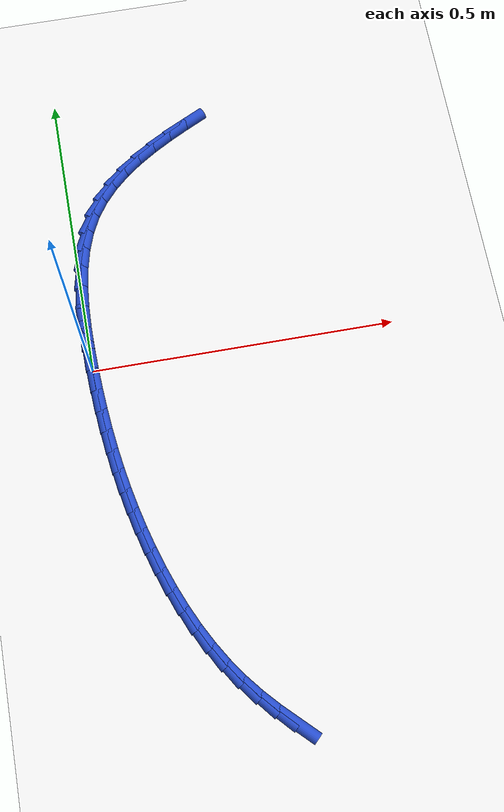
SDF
<sdf version="1.6">
 <world name="default">
  <model name="ground_plane">
   <static>1</static>
   <link name="link">
    <collision name="collision">
     <geometry><plane><normal>0 0 1</normal><size>100 100</size></plane></geometry>
     <surface><friction><ode><mu>100</mu><mu2>50</mu2></ode></friction></surface>
    </collision>
    <visual name="visual">
     <cast_shadows>0</cast_shadows>
     <geometry><plane><normal>0 0 1</normal><size>100 100</size></plane></geometry>
     <material>
      <script><uri>file://media/materials/scripts/gazebo.material</uri><name>Gazebo/WhiteGlow</name></script>
     </material>
    </visual>
   </link>
  </model>
  <model name="line">
   <link name="link_0">
    <pose>2.6386770372865964e-17 -6.245004513516506e-17 0.01 0 1.57 -1.5356055546608178</pose>
    <collision name="collision">
     <geometry><cylinder><radius>0.01</radius><length>0.08</length></cylinder></geometry>
    </collision>
    <visual name="visual">
     <material>
      <script><name>Gazebo/Blue</name><uri>file://media/materials/scripts/gazebo.material</uri></script>
     </material>
     <geometry><cylinder><radius>0.01</radius><length>0.08</length></cylinder></geometry>
    </visual>
   </link>
   <link name="link_1">
    <pose>-0.0012859215113197296 0.03652635521292729 0.01 0 1.57 -1.5630723326026337</pose>
    <collision name="collision">
     <geometry><cylinder><radius>0.01</radius><length>0.08</length></cylinder></geometry>
    </collision>
    <visual name="visual">
     <material>
      <script><name>Gazebo/Blue</name><uri>file://media/materials/scripts/gazebo.material</uri></script>
     </material>
     <geometry><cylinder><radius>0.01</radius><length>0.08</length></cylinder></geometry>
    </visual>
   </link>
   <link name="link_2">
    <pose>-0.0015701296713868072 0.0733211146352177 0.01 0 1.57 1.5403618289181997</pose>
    <collision name="collision">
     <geometry><cylinder><radius>0.01</radius><length>0.08</length></cylinder></geometry>
    </collision>
    <visual name="visual">
     <material>
      <script><name>Gazebo/Blue</name><uri>file://media/materials/scripts/gazebo.material</uri></script>
     </material>
     <geometry><cylinder><radius>0.01</radius><length>0.08</length></cylinder></geometry>
    </visual>
   </link>
   <link name="link_3">
    <pose>-0.00045516800112419204 0.10994460045333272 0.01 0 1.57 1.4901225052156661</pose>
    <collision name="collision">
     <geometry><cylinder><radius>0.01</radius><length>0.08</length></cylinder></geometry>
    </collision>
    <visual name="visual">
     <material>
      <script><name>Gazebo/Blue</name><uri>file://media/materials/scripts/gazebo.material</uri></script>
     </material>
     <geometry><cylinder><radius>0.01</radius><length>0.08</length></cylinder></geometry>
    </visual>
   </link>
   <link name="link_4">
    <pose>0.0024564199785451334 0.14595713485373366 0.01 0 1.57 1.425786116624287</pose>
    <collision name="collision">
     <geometry><cylinder><radius>0.01</radius><length>0.08</length></cylinder></geometry>
    </collision>
    <visual name="visual">
     <material>
      <script><name>Gazebo/Blue</name><uri>file://media/materials/scripts/gazebo.material</uri></script>
     </material>
     <geometry><cylinder><radius>0.01</radius><length>0.08</length></cylinder></geometry>
    </visual>
   </link>
   <link name="link_5">
    <pose>0.007562090746698185 0.180919040022882 0.01 0 1.57 1.3447636216351997</pose>
    <collision name="collision">
     <geometry><cylinder><radius>0.01</radius><length>0.08</length></cylinder></geometry>
    </collision>
    <visual name="visual">
     <material>
      <script><name>Gazebo/Blue</name><uri>file://media/materials/scripts/gazebo.material</uri></script>
     </material>
     <geometry><cylinder><radius>0.01</radius><length>0.08</length></cylinder></geometry>
    </visual>
   </link>
   <link name="link_6">
    <pose>0.015259300782411986 0.21439063814723916 0.01 0 1.57 1.2441365064731917</pose>
    <collision name="collision">
     <geometry><cylinder><radius>0.01</radius><length>0.08</length></cylinder></geometry>
    </collision>
    <visual name="visual">
     <material>
      <script><name>Gazebo/Blue</name><uri>file://media/materials/scripts/gazebo.material</uri></script>
     </material>
     <geometry><cylinder><radius>0.01</radius><length>0.08</length></cylinder></geometry>
    </visual>
   </link>
   <link name="link_7">
    <pose>0.02594550656476354 0.24593225141326658 0.01 0 1.57 1.1213596077069625</pose>
    <collision name="collision">
     <geometry><cylinder><radius>0.01</radius><length>0.08</length></cylinder></geometry>
    </collision>
    <visual name="visual">
     <material>
      <script><name>Gazebo/Blue</name><uri>file://media/materials/scripts/gazebo.material</uri></script>
     </material>
     <geometry><cylinder><radius>0.01</radius><length>0.08</length></cylinder></geometry>
    </visual>
   </link>
   <link name="link_8">
    <pose>0.04001730531521694 0.27510503336460845 0.01 0 1.57 0.9846122050661572</pose>
    <collision name="collision">
     <geometry><cylinder><radius>0.01</radius><length>0.08</length></cylinder></geometry>
    </collision>
    <visual name="visual">
     <material>
      <script><name>Gazebo/Blue</name><uri>file://media/materials/scripts/gazebo.material</uri></script>
     </material>
     <geometry><cylinder><radius>0.01</radius><length>0.08</length></cylinder></geometry>
    </visual>
   </link>
   <link name="link_9">
    <pose>0.057660380358999806 0.3016742029845734 0.01 0 1.57 0.8581073378328359</pose>
    <collision name="collision">
     <geometry><cylinder><radius>0.01</radius><length>0.08</length></cylinder></geometry>
    </collision>
    <visual name="visual">
     <material>
      <script><name>Gazebo/Blue</name><uri>file://media/materials/scripts/gazebo.material</uri></script>
     </material>
     <geometry><cylinder><radius>0.01</radius><length>0.08</length></cylinder></geometry>
    </visual>
   </link>
   <link name="link_10">
    <pose>0.07857486763970867 0.3258747607250155 0.01 0 1.57 0.7487419715797645</pose>
    <collision name="collision">
     <geometry><cylinder><radius>0.01</radius><length>0.08</length></cylinder></geometry>
    </collision>
    <visual name="visual">
     <material>
      <script><name>Gazebo/Blue</name><uri>file://media/materials/scripts/gazebo.material</uri></script>
     </material>
     <geometry><cylinder><radius>0.01</radius><length>0.08</length></cylinder></geometry>
    </visual>
   </link>
   <link name="link_11">
    <pose>0.10239282074968625 0.34800757872851135 0.01 0 1.57 0.6579338277247764</pose>
    <collision name="collision">
     <geometry><cylinder><radius>0.01</radius><length>0.08</length></cylinder></geometry>
    </collision>
    <visual name="visual">
     <material>
      <script><name>Gazebo/Blue</name><uri>file://media/materials/scripts/gazebo.material</uri></script>
     </material>
     <geometry><cylinder><radius>0.01</radius><length>0.08</length></cylinder></geometry>
    </visual>
   </link>
   <link name="link_12">
    <pose>0.12874629328127532 0.3683735291376379 0.01 0 1.57 0.5852284718221454</pose>
    <collision name="collision">
     <geometry><cylinder><radius>0.01</radius><length>0.08</length></cylinder></geometry>
    </collision>
    <visual name="visual">
     <material>
      <script><name>Gazebo/Blue</name><uri>file://media/materials/scripts/gazebo.material</uri></script>
     </material>
     <geometry><cylinder><radius>0.01</radius><length>0.08</length></cylinder></geometry>
    </visual>
   </link>
   <link name="link_13">
    <pose>0.1572673388268185 0.38727348409497153 0.01 0 1.57 0.5292492106829894</pose>
    <collision name="collision">
     <geometry><cylinder><radius>0.01</radius><length>0.08</length></cylinder></geometry>
    </collision>
    <visual name="visual">
     <material>
      <script><name>Gazebo/Blue</name><uri>file://media/materials/scripts/gazebo.material</uri></script>
     </material>
     <geometry><cylinder><radius>0.01</radius><length>0.08</length></cylinder></geometry>
    </visual>
   </link>
   <link name="link_14">
    <pose>0.18758801097865865 0.4050083157430891 0.01 0 1.57 0.4883865926694028</pose>
    <collision name="collision">
     <geometry><cylinder><radius>0.01</radius><length>0.08</length></cylinder></geometry>
    </collision>
    <visual name="visual">
     <material>
      <script><name>Gazebo/Blue</name><uri>file://media/materials/scripts/gazebo.material</uri></script>
     </material>
     <geometry><cylinder><radius>0.01</radius><length>0.08</length></cylinder></geometry>
    </visual>
   </link>
   <link name="link_15">
    <pose>0.21934036332913837 0.42187889622456726 0.01 0 1.57 0.4611862426254339</pose>
    <collision name="collision">
     <geometry><cylinder><radius>0.01</radius><length>0.08</length></cylinder></geometry>
    </collision>
    <visual name="visual">
     <material>
      <script><name>Gazebo/Blue</name><uri>file://media/materials/scripts/gazebo.material</uri></script>
     </material>
     <geometry><cylinder><radius>0.01</radius><length>0.08</length></cylinder></geometry>
    </visual>
   </link>
   <link name="link_211">
    <pose>0.22180204644094437 -0.6049320615983813 0.01 0 1.57 -0.7749138666314349</pose>
    <collision name="collision">
     <geometry><cylinder><radius>0.01</radius><length>0.08</length></cylinder></geometry>
    </collision>
    <visual name="visual">
     <material>
      <script><name>Gazebo/Blue</name><uri>file://media/materials/scripts/gazebo.material</uri></script>
     </material>
     <geometry><cylinder><radius>0.01</radius><length>0.08</length></cylinder></geometry>
    </visual>
   </link>
   <link name="link_212">
    <pose>0.1975781982512313 -0.5812109015224816 0.01 0 1.57 -0.8275202315563308</pose>
    <collision name="collision">
     <geometry><cylinder><radius>0.01</radius><length>0.08</length></cylinder></geometry>
    </collision>
    <visual name="visual">
     <material>
      <script><name>Gazebo/Blue</name><uri>file://media/materials/scripts/gazebo.material</uri></script>
     </material>
     <geometry><cylinder><radius>0.01</radius><length>0.08</length></cylinder></geometry>
    </visual>
   </link>
   <link name="link_213">
    <pose>0.17466398257765706 -0.5562801647428105 0.01 0 1.57 -0.8880499036819132</pose>
    <collision name="collision">
     <geometry><cylinder><radius>0.01</radius><length>0.08</length></cylinder></geometry>
    </collision>
    <visual name="visual">
     <material>
      <script><name>Gazebo/Blue</name><uri>file://media/materials/scripts/gazebo.material</uri></script>
     </material>
     <geometry><cylinder><radius>0.01</radius><length>0.08</length></cylinder></geometry>
    </visual>
   </link>
   <link name="link_214">
    <pose>0.15324415365968297 -0.5299404416082398 0.01 0 1.57 -0.9552936109284238</pose>
    <collision name="collision">
     <geometry><cylinder><radius>0.01</radius><length>0.08</length></cylinder></geometry>
    </collision>
    <visual name="visual">
     <material>
      <script><name>Gazebo/Blue</name><uri>file://media/materials/scripts/gazebo.material</uri></script>
     </material>
     <geometry><cylinder><radius>0.01</radius><length>0.08</length></cylinder></geometry>
    </visual>
   </link>
   <link name="link_215">
    <pose>0.13349305542224207 -0.5020095338169032 0.01 0 1.57 -1.0211977718577867</pose>
    <collision name="collision">
     <geometry><cylinder><radius>0.01</radius><length>0.08</length></cylinder></geometry>
    </collision>
    <visual name="visual">
     <material>
      <script><name>Gazebo/Blue</name><uri>file://media/materials/scripts/gazebo.material</uri></script>
     </material>
     <geometry><cylinder><radius>0.01</radius><length>0.08</length></cylinder></geometry>
    </visual>
   </link>
   <link name="link_216">
    <pose>0.11544222650766334 -0.4725413427149124 0.01 0 1.57 -1.0806727566116565</pose>
    <collision name="collision">
     <geometry><cylinder><radius>0.01</radius><length>0.08</length></cylinder></geometry>
    </collision>
    <visual name="visual">
     <material>
      <script><name>Gazebo/Blue</name><uri>file://media/materials/scripts/gazebo.material</uri></script>
     </material>
     <geometry><cylinder><radius>0.01</radius><length>0.08</length></cylinder></geometry>
    </visual>
   </link>
   <link name="link_217">
    <pose>0.09901954838408325 -0.4417611458180138 0.01 0 1.57 -1.1341810727296648</pose>
    <collision name="collision">
     <geometry><cylinder><radius>0.01</radius><length>0.08</length></cylinder></geometry>
    </collision>
    <visual name="visual">
     <material>
      <script><name>Gazebo/Blue</name><uri>file://media/materials/scripts/gazebo.material</uri></script>
     </material>
     <geometry><cylinder><radius>0.01</radius><length>0.08</length></cylinder></geometry>
    </visual>
   </link>
   <link name="link_218">
    <pose>0.08415057464624168 -0.40989806930973155 0.01 0 1.57 -1.1823320885928164</pose>
    <collision name="collision">
     <geometry><cylinder><radius>0.01</radius><length>0.08</length></cylinder></geometry>
    </collision>
    <visual name="visual">
     <material>
      <script><name>Gazebo/Blue</name><uri>file://media/materials/scripts/gazebo.material</uri></script>
     </material>
     <geometry><cylinder><radius>0.01</radius><length>0.08</length></cylinder></geometry>
    </visual>
   </link>
   <link name="link_219">
    <pose>0.07076085888887815 -0.3771812393735886 0.01 0 1.57 -1.2257192991820336</pose>
    <collision name="collision">
     <geometry><cylinder><radius>0.01</radius><length>0.08</length></cylinder></geometry>
    </collision>
    <visual name="visual">
     <material>
      <script><name>Gazebo/Blue</name><uri>file://media/materials/scripts/gazebo.material</uri></script>
     </material>
     <geometry><cylinder><radius>0.01</radius><length>0.08</length></cylinder></geometry>
    </visual>
   </link>
   <link name="link_220">
    <pose>0.05877595470673329 -0.34383978219311095 0.01 0 1.57 -1.2648968976108184</pose>
    <collision name="collision">
     <geometry><cylinder><radius>0.01</radius><length>0.08</length></cylinder></geometry>
    </collision>
    <visual name="visual">
     <material>
      <script><name>Gazebo/Blue</name><uri>file://media/materials/scripts/gazebo.material</uri></script>
     </material>
     <geometry><cylinder><radius>0.01</radius><length>0.08</length></cylinder></geometry>
    </visual>
   </link>
   <link name="link_221">
    <pose>0.04812141569454663 -0.31010282395182204 0.01 0 1.57 -1.3003690648900965</pose>
    <collision name="collision">
     <geometry><cylinder><radius>0.01</radius><length>0.08</length></cylinder></geometry>
    </collision>
    <visual name="visual">
     <material>
      <script><name>Gazebo/Blue</name><uri>file://media/materials/scripts/gazebo.material</uri></script>
     </material>
     <geometry><cylinder><radius>0.01</radius><length>0.08</length></cylinder></geometry>
    </visual>
   </link>
   <link name="link_222">
    <pose>0.03872279544705806 -0.2761994908332457 0.01 0 1.57 -1.3327938383768845</pose>
    <collision name="collision">
     <geometry><cylinder><radius>0.01</radius><length>0.08</length></cylinder></geometry>
    </collision>
    <visual name="visual">
     <material>
      <script><name>Gazebo/Blue</name><uri>file://media/materials/scripts/gazebo.material</uri></script>
     </material>
     <geometry><cylinder><radius>0.01</radius><length>0.08</length></cylinder></geometry>
    </visual>
   </link>
   <link name="link_223">
    <pose>0.03050585658581642 -0.24232925766868396 0.01 0 1.57 -1.3638129635084668</pose>
    <collision name="collision">
     <geometry><cylinder><radius>0.01</radius><length>0.08</length></cylinder></geometry>
    </collision>
    <visual name="visual">
     <material>
      <script><name>Gazebo/Blue</name><uri>file://media/materials/scripts/gazebo.material</uri></script>
     </material>
     <geometry><cylinder><radius>0.01</radius><length>0.08</length></cylinder></geometry>
    </visual>
   </link>
   <link name="link_224">
    <pose>0.023397852462611765 -0.2084801327908882 0.01 0 1.57 -1.3937474341627636</pose>
    <collision name="collision">
     <geometry><cylinder><radius>0.01</radius><length>0.08</length></cylinder></geometry>
    </collision>
    <visual name="visual">
     <material>
      <script><name>Gazebo/Blue</name><uri>file://media/materials/scripts/gazebo.material</uri></script>
     </material>
     <geometry><cylinder><radius>0.01</radius><length>0.08</length></cylinder></geometry>
    </visual>
   </link>
   <link name="link_225">
    <pose>0.01732668397823732 -0.17454826692031095 0.01 0 1.57 -1.4222330329116193</pose>
    <collision name="collision">
     <geometry><cylinder><radius>0.01</radius><length>0.08</length></cylinder></geometry>
    </collision>
    <visual name="visual">
     <material>
      <script><name>Gazebo/Blue</name><uri>file://media/materials/scripts/gazebo.material</uri></script>
     </material>
     <geometry><cylinder><radius>0.01</radius><length>0.08</length></cylinder></geometry>
    </visual>
   </link>
   <link name="link_226">
    <pose>0.012220254671583998 -0.14042943655193213 0.01 0 1.57 -1.4489448720569063</pose>
    <collision name="collision">
     <geometry><cylinder><radius>0.01</radius><length>0.08</length></cylinder></geometry>
    </collision>
    <visual name="visual">
     <material>
      <script><name>Gazebo/Blue</name><uri>file://media/materials/scripts/gazebo.material</uri></script>
     </material>
     <geometry><cylinder><radius>0.01</radius><length>0.08</length></cylinder></geometry>
    </visual>
   </link>
   <link name="link_227">
    <pose>0.008006468081542708 -0.10601941818073175 0.01 0 1.57 -1.4736117569640168</pose>
    <collision name="collision">
     <geometry><cylinder><radius>0.01</radius><length>0.08</length></cylinder></geometry>
    </collision>
    <visual name="visual">
     <material>
      <script><name>Gazebo/Blue</name><uri>file://media/materials/scripts/gazebo.material</uri></script>
     </material>
     <geometry><cylinder><radius>0.01</radius><length>0.08</length></cylinder></geometry>
    </visual>
   </link>
   <link name="link_228">
    <pose>0.004613227747004272 -0.07121398830168889 0.01 0 1.57 -1.4960234939794987</pose>
    <collision name="collision">
     <geometry><cylinder><radius>0.01</radius><length>0.08</length></cylinder></geometry>
    </collision>
    <visual name="visual">
     <material>
      <script><name>Gazebo/Blue</name><uri>file://media/materials/scripts/gazebo.material</uri></script>
     </material>
     <geometry><cylinder><radius>0.01</radius><length>0.08</length></cylinder></geometry>
    </visual>
   </link>
   <link name="link_229">
    <pose>0.0019684372068597745 -0.03590892340978529 0.01 0 1.57 -1.5160336417224343</pose>
    <collision name="collision">
     <geometry><cylinder><radius>0.01</radius><length>0.08</length></cylinder></geometry>
    </collision>
    <visual name="visual">
     <material>
      <script><name>Gazebo/Blue</name><uri>file://media/materials/scripts/gazebo.material</uri></script>
     </material>
     <geometry><cylinder><radius>0.01</radius><length>0.08</length></cylinder></geometry>
    </visual>
   </link>
   <link name="link_230">
    <pose>2.199575157429967e-17 -4.85722573273506e-17 0.01 0 1.57 -1.533558172017769</pose>
    <collision name="collision">
     <geometry><cylinder><radius>0.01</radius><length>0.08</length></cylinder></geometry>
    </collision>
    <visual name="visual">
     <material>
      <script><name>Gazebo/Blue</name><uri>file://media/materials/scripts/gazebo.material</uri></script>
     </material>
     <geometry><cylinder><radius>0.01</radius><length>0.08</length></cylinder></geometry>
    </visual>
   </link>
   <link name="link_231">
    <pose>-0.001364180334684077 0.036617005432686825 0.01 0 1.57 -1.5485708863560421</pose>
    <collision name="collision">
     <geometry><cylinder><radius>0.01</radius><length>0.08</length></cylinder></geometry>
    </collision>
    <visual name="visual">
     <material>
      <script><name>Gazebo/Blue</name><uri>file://media/materials/scripts/gazebo.material</uri></script>
     </material>
     <geometry><cylinder><radius>0.01</radius><length>0.08</length></cylinder></geometry>
    </visual>
   </link>
   <link name="link_232">
    <pose>-0.00219620025830162 0.0740463163932954 0.01 0 1.57 -1.5411452016300426</pose>
    <collision name="collision">
     <geometry><cylinder><radius>0.01</radius><length>0.08</length></cylinder></geometry>
    </collision>
    <visual name="visual">
     <material>
      <script><name>Gazebo/Blue</name><uri>file://media/materials/scripts/gazebo.material</uri></script>
     </material>
     <geometry><cylinder><radius>0.01</radius><length>0.08</length></cylinder></geometry>
    </visual>
   </link>
  </model>
 </world>
</sdf>
